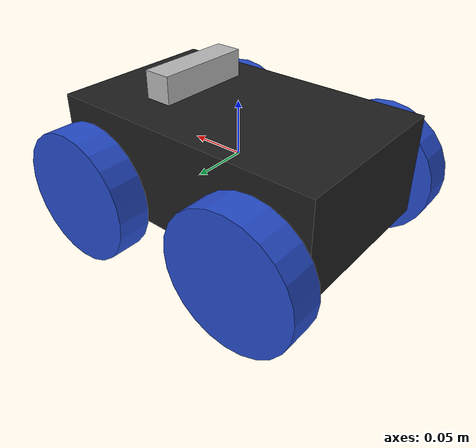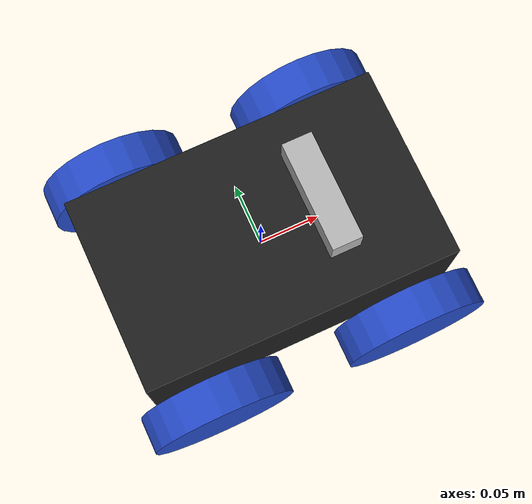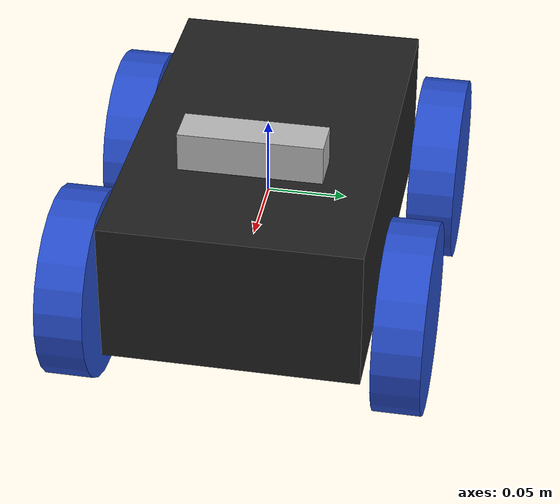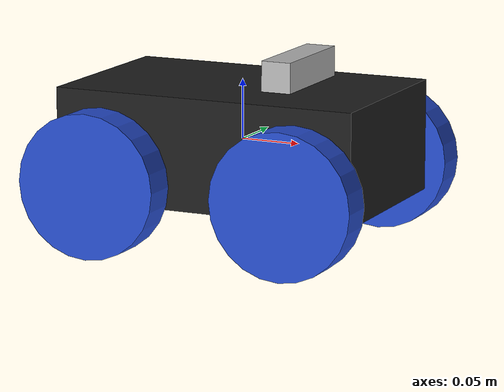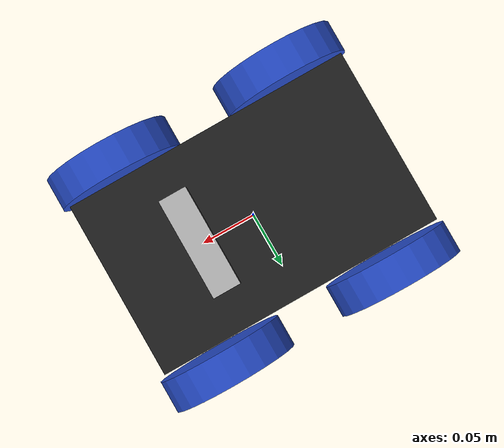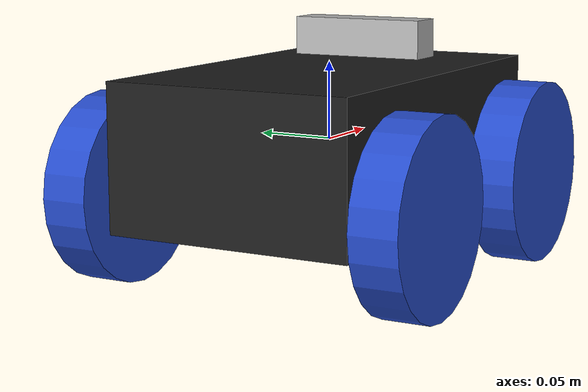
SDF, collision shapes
<?xml version='1.0'?>
<sdf version='1.6'>
  <model name='m2wr'>
	  <include>
      <uri>model://realsense_model</uri>
      <pose>0.05 0 0.05 0 0 0</pose>
    </include>

    <joint name="realsense_joint" type="revolute">
      <parent>link_chassis</parent>
      <child>realsense2_camera::base_link</child>
      <axis>
        <limit>
          <lower>0</lower>
          <upper>0</upper>
        </limit>
        <xyz>0 0 1</xyz>
        <use_parent_model_frame>true</use_parent_model_frame>
      </axis>
    </joint>

	  <link name='link_chassis'>
      <pose frame=''>0 0 0 0 -0 0</pose>
      <inertial>
        <pose frame=''>0 0 0.1 0 -0 0</pose>
        <mass>1.27</mass>
        <inertia>
          <ixx>0.0080696</ixx>
          <ixy>0</ixy>
          <ixz>0</ixz>
          <iyy>0.00986333</iyy>
          <iyz>0</iyz>
          <izz>0.00362433</izz>
        </inertia>
      </inertial>
      <collision name='link_chassis_fixed_joint_lump__collision_chassis_collision'>
        <pose frame=''>0 0 0 0 -0 0</pose>
        <geometry>
          <box>
            <size>0.26 0.16 0.093</size>
          </box>
        </geometry>
      </collision>
      <visual name='link_chassis_visual'>
        <pose frame=''>0 0 0 0 -0 0</pose>
        <geometry>
          <box>
            <size>0.26 0.16 0.093</size>
          </box>
        </geometry>
        <material>
          <script>
            <name>Gazebo/Black</name>
            <uri>file://media/materials/scripts/gazebo.material</uri>
          </script>
        </material>
      </visual>
      <gravity>1</gravity>
      <velocity_decay/>
    </link>
    <link name='link_left_wheel'>
      <pose frame=''>-0.085 -0.1025 -0.0256 0 -0 0</pose>
      <inertial>
        <pose frame=''>0 0 -0 0 1.5707 1.5707</pose>
        <mass>0.01</mass>
        <inertia>
          <ixx>0.000526667</ixx>
          <ixy>0</ixy>
          <ixz>0</ixz>
          <iyy>0.000526667</iyy>
          <iyz>0</iyz>
          <izz>0.001</izz>
        </inertia>
      </inertial>
      <collision name='link_left_wheel_fixed_joint_lump__link_right_wheel_collision_collision'>
        <pose frame=''>0 0 -0 3.14159 1.57079 -1.57089</pose>
        <geometry>
          <cylinder>
            <length>0.03</length>
            <radius>0.06</radius>
          </cylinder>
        </geometry>
      </collision>
      <visual name='link_left_wheel_visual_visual'>
        <pose frame=''>0 0 -0 3.14159 1.57079 -1.57089</pose>
        <geometry>
          <cylinder>
            <length>0.03</length>
            <radius>0.06</radius>
          </cylinder>
        </geometry>
        <material>
          <script>
            <name>Gazebo/Blue</name>
            <uri>file://media/materials/scripts/gazebo.material</uri>
          </script>
        </material>
      </visual>
      <gravity>1</gravity>
      <velocity_decay/>
    </link>
    <joint name='joint_left_wheel' type='revolute'>
      <child>link_left_wheel</child>
      <parent>link_chassis</parent>
      <axis>
	      <xyz>0 1 0</xyz>
        <limit effort="10000" velocity="1000">
          <lower>-1e+16</lower>
          <upper>1e+16</upper>
        </limit>
        <dynamics>
          <spring_reference>0</spring_reference>
          <spring_stiffness>0</spring_stiffness>
        </dynamics>
        <use_parent_model_frame>1</use_parent_model_frame>
      </axis>
    </joint>
    <link name='link_left_wheel_back'>
      <pose frame=''>0.085 -0.1025 -0.0256 0 -0 0</pose>
      <inertial>
        <pose frame=''>0 0 -0 0 1.5707 1.5707</pose>
        <mass>0.01</mass>
        <inertia>
          <ixx>0.000526667</ixx>
          <ixy>0</ixy>
          <ixz>0</ixz>
          <iyy>0.000526667</iyy>
          <iyz>0</iyz>
          <izz>0.001</izz>
        </inertia>
      </inertial>
      <collision name='link_left_wheel_back_fixed_joint_lump__link_right_wheel_collision_collision'>
        <pose frame=''>0 0 -0 3.14159 1.57079 -1.57089</pose>
        <geometry>
          <cylinder>
            <length>0.03</length>
            <radius>0.06</radius>
          </cylinder>
        </geometry>
      </collision>
      <visual name='link_left_wheel_back_visual_visual'>
        <pose frame=''>0 0 -0 3.14159 1.57079 -1.57089</pose>
        <geometry>
          <cylinder>
            <length>0.03</length>
            <radius>0.06</radius>
          </cylinder>
        </geometry>
        <material>
          <script>
            <name>Gazebo/Blue</name>
            <uri>file://media/materials/scripts/gazebo.material</uri>
          </script>
        </material>
      </visual>
      <gravity>1</gravity>
      <velocity_decay/>
    </link>
    <joint name='joint_left_wheel_back' type='revolute'>
      <child>link_left_wheel_back</child>
      <parent>link_chassis</parent>
      <axis>
        <xyz>0 1 0</xyz>
        <limit effort="10000" velocity="1000">
          <lower>-1e+16</lower>
          <upper>1e+16</upper>
        </limit>
        <dynamics>
          <spring_reference>0</spring_reference>
          <spring_stiffness>0</spring_stiffness>
        </dynamics>
        <use_parent_model_frame>1</use_parent_model_frame>
      </axis>
    </joint>
    <link name='link_right_wheel'>
      <pose frame=''>-0.085 0.1025 -0.0256 0 -0 0</pose>
      <inertial>
        <pose frame=''>0 0 -0 0 1.5707 1.5707</pose>
        <mass>0.01</mass>
        <inertia>
          <ixx>0.000526667</ixx>
          <ixy>0</ixy>
          <ixz>0</ixz>
          <iyy>0.000526667</iyy>
          <iyz>0</iyz>
          <izz>0.001</izz>
        </inertia>
      </inertial>
      <collision name='link_right_wheel_collision_collision'>
        <pose frame=''>0 0 -0 3.14159 1.57079 -1.57089</pose>
        <geometry>
          <cylinder>
            <length>0.03</length>
            <radius>0.06</radius>
          </cylinder>
        </geometry>
        <surface>
          <contact>
            <ode/>
          </contact>
          <friction>
            <ode/>
          </friction>
        </surface>
      </collision>
      <visual name='link_right_wheel_visual_visual'>
        <pose frame=''>0 0 -0 3.14159 1.57079 -1.57089</pose>
        <geometry>
          <cylinder>
            <length>0.03</length>
            <radius>0.06</radius>
          </cylinder>
        </geometry>
        <material>
          <script>
            <name>Gazebo/Blue</name>
            <uri>file://media/materials/scripts/gazebo.material</uri>
          </script>
        </material>
      </visual>
      <gravity>1</gravity>
      <velocity_decay/>
    </link>
    <joint name='joint_right_wheel' type='revolute'>
      <child>link_right_wheel</child>
      <parent>link_chassis</parent>
      <axis>
        <xyz>0 1 0</xyz>
        <limit effort="10000" velocity="1000">
          <lower>-1e+16</lower>
          <upper>1e+16</upper>
        </limit>
        <dynamics>
          <spring_reference>0</spring_reference>
          <spring_stiffness>0</spring_stiffness>
        </dynamics>
        <use_parent_model_frame>1</use_parent_model_frame>
      </axis>
    </joint>
    <link name='link_right_wheel_back'>
      <pose frame=''>0.085 0.1025 -0.0256 0 -0 0</pose>
      <inertial>
        <pose frame=''>0 0 -0 0 1.5707 1.5707</pose>
        <mass>0.01</mass>
        <inertia>
          <ixx>0.000526667</ixx>
          <ixy>0</ixy>
          <ixz>0</ixz>
          <iyy>0.000526667</iyy>
          <iyz>0</iyz>
          <izz>0.001</izz>
        </inertia>
      </inertial>
      <collision name='link_right_wheel_back_fixed_joint_lump__link_right_wheel_collision_collision'>
        <pose frame=''>0 0 -0 3.14159 1.57079 -1.57089</pose>
        <geometry>
          <cylinder>
            <length>0.03</length>
            <radius>0.06</radius>
          </cylinder>
        </geometry>
      </collision>
      <visual name='link_right_wheel_back_visual_visual'>
        <pose frame=''>0 0 -0 3.14159 1.57079 -1.57089</pose>
        <geometry>
          <cylinder>
            <length>0.03</length>
            <radius>0.06</radius>
          </cylinder>
        </geometry>
        <material>
          <script>
            <name>Gazebo/Blue</name>
            <uri>file://media/materials/scripts/gazebo.material</uri>
          </script>
        </material>
      </visual>
      <gravity>1</gravity>
      <velocity_decay/>
    </link>
    <joint name='joint_right_wheel_back' type='revolute'>
      <child>link_right_wheel_back</child>
      <parent>link_chassis</parent>
      <axis>
        <xyz>0 1 0</xyz>
        <limit effort="10000" velocity="1000">
          <lower>-1e+16</lower>
          <upper>1e+16</upper>
        </limit>
        <dynamics>
          <spring_reference>0</spring_reference>
          <spring_stiffness>0</spring_stiffness>
        </dynamics>
        <use_parent_model_frame>1</use_parent_model_frame>
      </axis>
    </joint>
    <static>0</static>

    <plugin name="turtlebot3_burger_controller" filename="libgazebo_ros_skid_steer_drive.so">
      <robotNamespace>/</robotNamespace>
      <commandTopic>cmd_vel2</commandTopic>
      <odometryTopic>odom</odometryTopic>
      <odometryFrame>odom</odometryFrame>
      <odometrySource>world</odometrySource>
      <publishOdomTF>true</publishOdomTF>
      <robotBaseFrame>link_chassis</robotBaseFrame>
      <publishWheelTF>false</publishWheelTF>
      <publishTf>true</publishTf>
      <publishWheelJointState>true</publishWheelJointState>
      <legacyMode>false</legacyMode>
      <updateRate>30</updateRate>
      <leftFrontJoint>joint_left_wheel</leftFrontJoint>
      <rightFrontJoint>joint_right_wheel</rightFrontJoint>
      <leftRearJoint>joint_left_wheel_back</leftRearJoint>
      <rightRearJoint>joint_right_wheel_back</rightRearJoint>
      <wheelSeparation>0.175</wheelSeparation>
      <wheelDiameter>0.12</wheelDiameter>
      <broadcastTF>1</broadcastTF>

      <torque>2</torque>
      <rosDebugLevel>na</rosDebugLevel>
    </plugin>

  </model>
</sdf>

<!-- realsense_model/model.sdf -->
<sdf version='1.6'>
  <model name='realsense2_camera'>
    <link name='base_link'>
   <pose frame=''>0 0 0 0 0 0</pose>
      <inertial>
        <pose frame=''>0 0.0175 0.0125 0 -0 0</pose>
        <mass>0.05</mass>
        <inertia>
          <ixx>0.00388124</ixx>
          <ixy>0</ixy>
          <ixz>0</ixz>
          <iyy>0.00049894</iyy>
          <iyz>0</iyz>
          <izz>0.00387926</izz>
        </inertia>
      </inertial>
      <collision name='base_link_fixed_joint_lump__camera_link_collision'>
        <pose frame=''>0 0 0.0125 0 -0 0</pose>
        <geometry>
          <box>
            <size>0.02505 0.09 0.025</size>
          </box>
        </geometry>
        <surface>
          <contact>
            <ode>
              <kp>1e+13</kp>
              <kd>1</kd>
            </ode>
          </contact>
          <friction>
            <ode>
              <mu2>1</mu2>
              <fdir1>0 0 0</fdir1>
            </ode>
          </friction>
        </surface>
      </collision>
      <visual name='base_link_fixed_joint_lump__camera_link_visual'>
        <pose frame=''>0.0149 0 0.0125 1.5708 -0 1.5708</pose>
        <geometry>
          <mesh>
            <scale>1 1 1</scale>
            <uri>model://realsense_model/meshes/d435.dae</uri>
          </mesh>
        </geometry>
        <material>
          <script>
            <uri>__default__</uri>
            <name>__default__</name>
          </script>
        </material>
      </visual>
      <gravity>1</gravity>
      <velocity_decay/>
      <self_collide>0</self_collide>
      <enable_wind>0</enable_wind>
      <kinematic>0</kinematic>
      <gravity>1</gravity>
      <sensor name='cameracolor' type='camera'>
        <camera name='camera'>
          <horizontal_fov>1.21126</horizontal_fov>
          <image>
            <width>192</width>
            <height>108</height>
            <format>RGB_INT8</format>
          </image>
          <clip>
            <near>0.1</near>
            <far>100</far>
          </clip>
          <noise>
            <type>gaussian</type>
            <mean>0</mean>
            <stddev>0.007</stddev>
          </noise>
        </camera>
        <always_on>1</always_on>
        <update_rate>30</update_rate>
        <visualize>1</visualize>
        <pose frame=''>0 0.0175 0.0125 0 -0 0</pose>
      </sensor>
      <sensor name='cameraired1' type='camera'>
        <camera name='camera'>
          <horizontal_fov>1.48702</horizontal_fov>
          <image>
            <width>640</width>
            <height>480</height>
            <format>L_INT8</format>
          </image>
          <clip>
            <near>0.1</near>
            <far>100</far>
          </clip>
          <noise>
            <type>gaussian</type>
            <mean>0</mean>
            <stddev>0.005</stddev>
          </noise>
        </camera>
        <always_on>1</always_on>
        <update_rate>30</update_rate>
        <visualize>0</visualize>
        <pose frame=''>0 -0.025 0.0125 0 -0 0</pose>
      </sensor>
      <sensor name='cameraired2' type='camera'>
        <camera name='camera'>
          <horizontal_fov>1.48702</horizontal_fov>
          <image>
            <width>640</width>
            <height>480</height>
            <format>L_INT8</format>
          </image>
          <clip>
            <near>0.1</near>
            <far>100</far>
          </clip>
          <noise>
            <type>gaussian</type>
            <mean>0</mean>
            <stddev>0.005</stddev>
          </noise>
        </camera>
        <always_on>1</always_on>
        <update_rate>30</update_rate>
        <visualize>0</visualize>
        <pose frame=''>0 0.025 0.0125 0 -0 0</pose>
      </sensor>
      <sensor name='cameradepth' type='depth'>
	<camera name='camera'>
	<horizontal_fov>1.48702</horizontal_fov>
          <image>
            <width>640</width>
	    <height>480</height>
          </image>
          <clip>
            <near>0.1</near>
            <far>100</far>
          </clip>
          <noise>
            <type>gaussian</type>
            <mean>0</mean>
            <stddev>0.1</stddev>
          </noise>
        </camera>
        <always_on>1</always_on>
        <update_rate>30</update_rate>
        <visualize>0</visualize>
        <pose frame=''>0 0.0175 0.0125 0 -0 0</pose>
    </sensor>
    <sensor name="imu_sensor" type="imu">
	    <always_on>true</always_on>
	    <update_rate>100</update_rate>
	    <visualize>true</visualize>
	    <topic>__default_topic__</topic>
	    <plugin filename="libgazebo_ros_imu_sensor.so" name="imu_plugin">
		    <topicName>imu</topicName>
		    <bodyName>imu_link</bodyName>
		    <updateRateHZ>100.0</updateRateHZ>
		    <gaussianNoise>0.0</gaussianNoise>
		    <xyzOffset>0 0 0</xyzOffset>
		    <rpyOffset>0 0 0</rpyOffset>
		    <frameName>imu_link</frameName>
		    <initialOrientationAsReference>false</initialOrientationAsReference>
	    </plugin>
    </sensor>
    </link>
    <static>0</static>
    <plugin name='camera' filename='librealsense_gazebo_plugin.so'>
	    <prefix>camera</prefix>
      <depthUpdateRate>30.0</depthUpdateRate>
      <colorUpdateRate>30.0</colorUpdateRate>
      <infraredUpdateRate>30.0</infraredUpdateRate>
      <depthTopicName>depth/image_raw</depthTopicName>
      <depthCameraInfoTopicName>depth/camera_info</depthCameraInfoTopicName>
      <colorTopicName>color/image_raw</colorTopicName>
      <colorCameraInfoTopicName>color/camera_info</colorCameraInfoTopicName>
      <infrared1TopicName>infra1/image_raw</infrared1TopicName>
      <infrared1CameraInfoTopicName>infra1/camera_info</infrared1CameraInfoTopicName>
      <infrared2TopicName>infra2/image_raw</infrared2TopicName>
      <infrared2CameraInfoTopicName>infra2/camera_info</infrared2CameraInfoTopicName>
      <colorOpticalframeName>camera_color_optical_frame</colorOpticalframeName>
      <depthOpticalframeName>camera_depth_optical_frame</depthOpticalframeName>
      <infrared1OpticalframeName>camera_left_ir_optical_frame</infrared1OpticalframeName>
      <infrared2OpticalframeName>camera_right_ir_optical_frame</infrared2OpticalframeName>
      <rangeMinDepth>0.2</rangeMinDepth>
      <rangeMaxDepth>10.0</rangeMaxDepth>
      <pointCloud>1</pointCloud>
      <pointCloudTopicName>depth/points</pointCloudTopicName>
      <pointCloudCutoff>0.5</pointCloudCutoff>
    </plugin>

  </model>
 </sdf>
